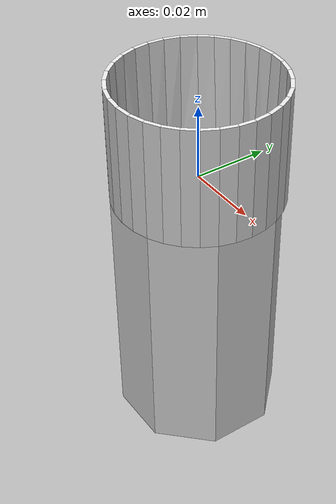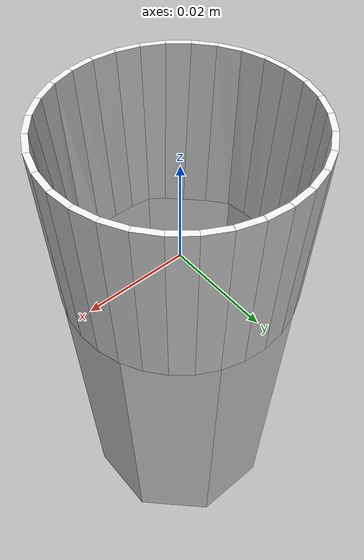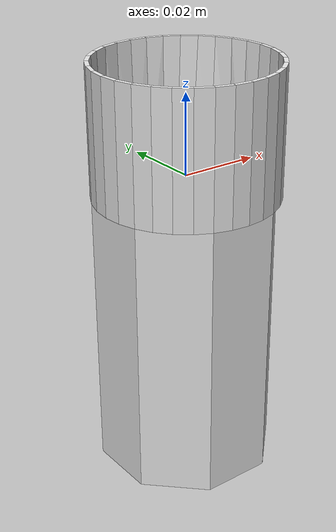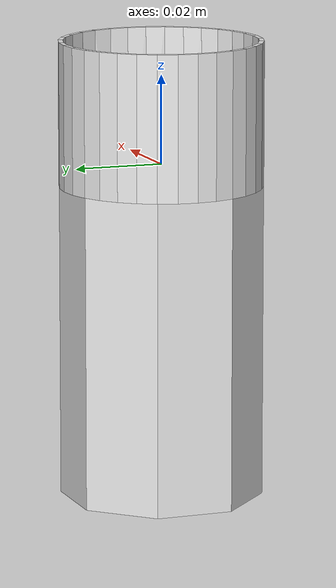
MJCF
<mujoco model="jeroen_cup">
    <compiler angle="radian" meshdir="." autolimits="true" inertiafromgeom="true"/>
    <asset>
        <mesh name="JeroenCup" file="stl/JeroenCup.stl" />
        <mesh name="UCX_JeroenCup_001" file="stl/UCX_JeroenCup_01.stl" />
		<mesh name="UCX_JeroenCup_002" file="stl/UCX_JeroenCup_02.stl" />
		<mesh name="UCX_JeroenCup_003" file="stl/UCX_JeroenCup_03.stl" />
		<mesh name="UCX_JeroenCup_004" file="stl/UCX_JeroenCup_04.stl" />
		<mesh name="UCX_JeroenCup_005" file="stl/UCX_JeroenCup_05.stl" />
		<mesh name="UCX_JeroenCup_006" file="stl/UCX_JeroenCup_06.stl" />
		<mesh name="UCX_JeroenCup_007" file="stl/UCX_JeroenCup_07.stl" />
		<mesh name="UCX_JeroenCup_008" file="stl/UCX_JeroenCup_08.stl" />
		<mesh name="UCX_JeroenCup_009" file="stl/UCX_JeroenCup_09.stl" />
		<mesh name="UCX_JeroenCup_010" file="stl/UCX_JeroenCup_010.stl" />
		<mesh name="UCX_JeroenCup_011" file="stl/UCX_JeroenCup_011.stl" />
		<mesh name="UCX_JeroenCup_012" file="stl/UCX_JeroenCup_012.stl" />
		<mesh name="UCX_JeroenCup_013" file="stl/UCX_JeroenCup_013.stl" />
		<mesh name="UCX_JeroenCup_014" file="stl/UCX_JeroenCup_014.stl" />
		<mesh name="UCX_JeroenCup_015" file="stl/UCX_JeroenCup_015.stl" />
		<mesh name="UCX_JeroenCup_016" file="stl/UCX_JeroenCup_016.stl" />
		<mesh name="UCX_JeroenCup_017" file="stl/UCX_JeroenCup_017.stl" />
		<mesh name="UCX_JeroenCup_018" file="stl/UCX_JeroenCup_018.stl" />
		<mesh name="UCX_JeroenCup_019" file="stl/UCX_JeroenCup_019.stl" />
		<mesh name="UCX_JeroenCup_020" file="stl/UCX_JeroenCup_020.stl" />
		<mesh name="UCX_JeroenCup_021" file="stl/UCX_JeroenCup_021.stl" />
		<mesh name="UCX_JeroenCup_022" file="stl/UCX_JeroenCup_022.stl" />
		<mesh name="UCX_JeroenCup_023" file="stl/UCX_JeroenCup_023.stl" />
		<mesh name="UCX_JeroenCup_024" file="stl/UCX_JeroenCup_024.stl" />
		<mesh name="UCX_JeroenCup_025" file="stl/UCX_JeroenCup_025.stl" />
		<mesh name="UCX_JeroenCup_026" file="stl/UCX_JeroenCup_026.stl" />
		<mesh name="UCX_JeroenCup_027" file="stl/UCX_JeroenCup_027.stl" />
		<mesh name="UCX_JeroenCup_028" file="stl/UCX_JeroenCup_028.stl" />
		<mesh name="UCX_JeroenCup_029" file="stl/UCX_JeroenCup_029.stl" />
		<mesh name="UCX_JeroenCup_030" file="stl/UCX_JeroenCup_030.stl" />
		<mesh name="UCX_JeroenCup_031" file="stl/UCX_JeroenCup_031.stl" />
		<mesh name="UCX_JeroenCup_032" file="stl/UCX_JeroenCup_032.stl" />
		<mesh name="UCX_JeroenCup_033" file="stl/UCX_JeroenCup_033.stl" />
		<mesh name="UCX_JeroenCup_034" file="stl/UCX_JeroenCup_034.stl" />
		<mesh name="UCX_JeroenCup_035" file="stl/UCX_JeroenCup_035.stl" />
		<mesh name="UCX_JeroenCup_036" file="stl/UCX_JeroenCup_036.stl" />
		<mesh name="UCX_JeroenCup_037" file="stl/UCX_JeroenCup_037.stl" />
		<mesh name="UCX_JeroenCup_038" file="stl/UCX_JeroenCup_038.stl" />
		<mesh name="UCX_JeroenCup_039" file="stl/UCX_JeroenCup_039.stl" />
		<mesh name="UCX_JeroenCup_040" file="stl/UCX_JeroenCup_040.stl" />
		<mesh name="UCX_JeroenCup_041" file="stl/UCX_JeroenCup_041.stl" />
    </asset>
    <default>
        <default class="jeroen_cup_collision">
            <geom rgba="0.9 0.9 0.9 1.0"/>
        </default>
    </default>
    <worldbody>
        <body name="jeroen_cup">
            <freejoint />
            <inertial mass="0.3067432940006256" pos="0.00025758284027688205 -8.650930249132216e-05 -0.05204020068049431" diaginertia="0.0005065333680249751 0.0025513090658932924 0.002551322104409337"/>
            <geom name="UCX_JeroenCup_001" type="mesh" pos="0.0 0.0 0.0" quat="1.0 0.0 0.0 0.0" mesh="UCX_JeroenCup_001" class="jeroen_cup_collision"/>
            <geom name="UCX_JeroenCup_002" type="mesh" pos="0.0 0.0 0.0" quat="1.0 0.0 0.0 0.0" mesh="UCX_JeroenCup_002" class="jeroen_cup_collision"/>
            <geom name="UCX_JeroenCup_003" type="mesh" pos="0.0 0.0 0.0" quat="1.0 0.0 0.0 0.0" mesh="UCX_JeroenCup_003" class="jeroen_cup_collision"/>
            <geom name="UCX_JeroenCup_004" type="mesh" pos="0.0 0.0 0.0" quat="1.0 0.0 0.0 0.0" mesh="UCX_JeroenCup_004" class="jeroen_cup_collision"/>
            <geom name="UCX_JeroenCup_005" type="mesh" pos="0.0 0.0 0.0" quat="1.0 0.0 0.0 0.0" mesh="UCX_JeroenCup_005" class="jeroen_cup_collision"/>
            <geom name="UCX_JeroenCup_006" type="mesh" pos="0.0 0.0 0.0" quat="1.0 0.0 0.0 0.0" mesh="UCX_JeroenCup_006" class="jeroen_cup_collision"/>
            <geom name="UCX_JeroenCup_007" type="mesh" pos="0.0 0.0 0.0" quat="1.0 0.0 0.0 0.0" mesh="UCX_JeroenCup_007" class="jeroen_cup_collision"/>
            <geom name="UCX_JeroenCup_008" type="mesh" pos="0.0 0.0 0.0" quat="1.0 0.0 0.0 0.0" mesh="UCX_JeroenCup_008" class="jeroen_cup_collision"/>
            <geom name="UCX_JeroenCup_009" type="mesh" pos="0.0 0.0 0.0" quat="1.0 0.0 0.0 0.0" mesh="UCX_JeroenCup_009" class="jeroen_cup_collision"/>
            <geom name="UCX_JeroenCup_010" type="mesh" pos="0.0 0.0 0.0" quat="1.0 0.0 0.0 0.0" mesh="UCX_JeroenCup_010" class="jeroen_cup_collision"/>
            <geom name="UCX_JeroenCup_011" type="mesh" pos="0.0 0.0 0.0" quat="1.0 0.0 0.0 0.0" mesh="UCX_JeroenCup_011" class="jeroen_cup_collision"/>
            <geom name="UCX_JeroenCup_012" type="mesh" pos="0.0 0.0 0.0" quat="1.0 0.0 0.0 0.0" mesh="UCX_JeroenCup_012" class="jeroen_cup_collision"/>
            <geom name="UCX_JeroenCup_013" type="mesh" pos="0.0 0.0 0.0" quat="1.0 0.0 0.0 0.0" mesh="UCX_JeroenCup_013" class="jeroen_cup_collision"/>
            <geom name="UCX_JeroenCup_014" type="mesh" pos="0.0 0.0 0.0" quat="1.0 0.0 0.0 0.0" mesh="UCX_JeroenCup_014" class="jeroen_cup_collision"/>
            <geom name="UCX_JeroenCup_015" type="mesh" pos="0.0 0.0 0.0" quat="1.0 0.0 0.0 0.0" mesh="UCX_JeroenCup_015" class="jeroen_cup_collision"/>
            <geom name="UCX_JeroenCup_016" type="mesh" pos="0.0 0.0 0.0" quat="1.0 0.0 0.0 0.0" mesh="UCX_JeroenCup_016" class="jeroen_cup_collision"/>
            <geom name="UCX_JeroenCup_017" type="mesh" pos="0.0 0.0 0.0" quat="1.0 0.0 0.0 0.0" mesh="UCX_JeroenCup_017" class="jeroen_cup_collision"/>
            <geom name="UCX_JeroenCup_018" type="mesh" pos="0.0 0.0 0.0" quat="1.0 0.0 0.0 0.0" mesh="UCX_JeroenCup_018" class="jeroen_cup_collision"/>
            <geom name="UCX_JeroenCup_019" type="mesh" pos="0.0 0.0 0.0" quat="1.0 0.0 0.0 0.0" mesh="UCX_JeroenCup_019" class="jeroen_cup_collision"/>
            <geom name="UCX_JeroenCup_020" type="mesh" pos="0.0 0.0 0.0" quat="1.0 0.0 0.0 0.0" mesh="UCX_JeroenCup_020" class="jeroen_cup_collision"/>
            <geom name="UCX_JeroenCup_021" type="mesh" pos="0.0 0.0 0.0" quat="1.0 0.0 0.0 0.0" mesh="UCX_JeroenCup_021" class="jeroen_cup_collision"/>
            <geom name="UCX_JeroenCup_022" type="mesh" pos="0.0 0.0 0.0" quat="1.0 0.0 0.0 0.0" mesh="UCX_JeroenCup_022" class="jeroen_cup_collision"/>
            <geom name="UCX_JeroenCup_023" type="mesh" pos="0.0 0.0 0.0" quat="1.0 0.0 0.0 0.0" mesh="UCX_JeroenCup_023" class="jeroen_cup_collision"/>
            <geom name="UCX_JeroenCup_024" type="mesh" pos="0.0 0.0 0.0" quat="1.0 0.0 0.0 0.0" mesh="UCX_JeroenCup_024" class="jeroen_cup_collision"/>
            <geom name="UCX_JeroenCup_025" type="mesh" pos="0.0 0.0 0.0" quat="1.0 0.0 0.0 0.0" mesh="UCX_JeroenCup_025" class="jeroen_cup_collision"/>
            <geom name="UCX_JeroenCup_026" type="mesh" pos="0.0 0.0 0.0" quat="1.0 0.0 0.0 0.0" mesh="UCX_JeroenCup_026" class="jeroen_cup_collision"/>
            <geom name="UCX_JeroenCup_027" type="mesh" pos="0.0 0.0 0.0" quat="1.0 0.0 0.0 0.0" mesh="UCX_JeroenCup_027" class="jeroen_cup_collision"/>
            <geom name="UCX_JeroenCup_028" type="mesh" pos="0.0 0.0 0.0" quat="1.0 0.0 0.0 0.0" mesh="UCX_JeroenCup_028" class="jeroen_cup_collision"/>
            <geom name="UCX_JeroenCup_029" type="mesh" pos="0.0 0.0 0.0" quat="1.0 0.0 0.0 0.0" mesh="UCX_JeroenCup_029" class="jeroen_cup_collision"/>
            <geom name="UCX_JeroenCup_030" type="mesh" pos="0.0 0.0 0.0" quat="1.0 0.0 0.0 0.0" mesh="UCX_JeroenCup_030" class="jeroen_cup_collision"/>
            <geom name="UCX_JeroenCup_031" type="mesh" pos="0.0 0.0 0.0" quat="1.0 0.0 0.0 0.0" mesh="UCX_JeroenCup_031" class="jeroen_cup_collision"/>
            <geom name="UCX_JeroenCup_032" type="mesh" pos="0.0 0.0 0.0" quat="1.0 0.0 0.0 0.0" mesh="UCX_JeroenCup_032" class="jeroen_cup_collision"/>
            <geom name="UCX_JeroenCup_033" type="mesh" pos="0.0 0.0 0.0" quat="1.0 0.0 0.0 0.0" mesh="UCX_JeroenCup_033" class="jeroen_cup_collision"/>
            <geom name="UCX_JeroenCup_034" type="mesh" pos="0.0 0.0 0.0" quat="1.0 0.0 0.0 0.0" mesh="UCX_JeroenCup_034" class="jeroen_cup_collision"/>
            <geom name="UCX_JeroenCup_035" type="mesh" pos="0.0 0.0 0.0" quat="1.0 0.0 0.0 0.0" mesh="UCX_JeroenCup_035" class="jeroen_cup_collision"/>
            <geom name="UCX_JeroenCup_036" type="mesh" pos="0.0 0.0 0.0" quat="1.0 0.0 0.0 0.0" mesh="UCX_JeroenCup_036" class="jeroen_cup_collision"/>
            <geom name="UCX_JeroenCup_037" type="mesh" pos="0.0 0.0 0.0" quat="1.0 0.0 0.0 0.0" mesh="UCX_JeroenCup_037" class="jeroen_cup_collision"/>
            <geom name="UCX_JeroenCup_038" type="mesh" pos="0.0 0.0 0.0" quat="1.0 0.0 0.0 0.0" mesh="UCX_JeroenCup_038" class="jeroen_cup_collision"/>
            <geom name="UCX_JeroenCup_039" type="mesh" pos="0.0 0.0 0.0" quat="1.0 0.0 0.0 0.0" mesh="UCX_JeroenCup_039" class="jeroen_cup_collision"/>
            <geom name="UCX_JeroenCup_040" type="mesh" pos="0.0 0.0 0.0" quat="1.0 0.0 0.0 0.0" mesh="UCX_JeroenCup_040" class="jeroen_cup_collision"/>
            <geom name="UCX_JeroenCup_041" type="mesh" pos="0.0 0.0 0.0" quat="1.0 0.0 0.0 0.0" mesh="UCX_JeroenCup_041" class="jeroen_cup_collision"/>
        </body>
    </worldbody>
    <equality />
    <contact />
</mujoco>
